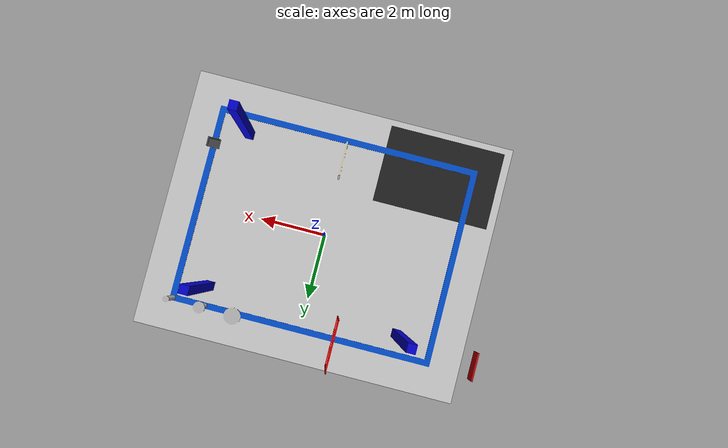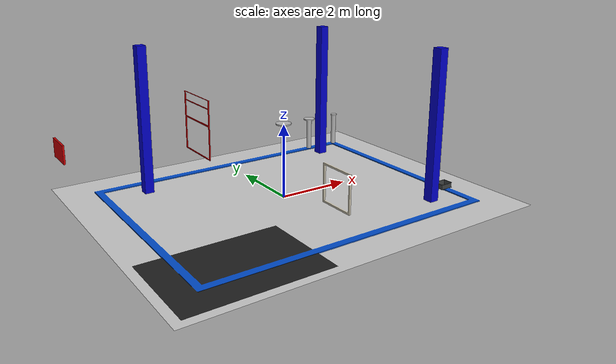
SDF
<?xml version="1.0"?>
<sdf version="1.6">
    <model name="imav_indoor24">
        <static>true</static>
        <link name="link">
            <collision name="collision">
                <geometry>
                    <mesh>
                        <scale>1 1 1</scale>
                        <uri>//imav_indoor24/meshes/mundoImav.dae</uri>
                    </mesh>
                    <surface>
                        <friction>
                            <ode>
                                <mu>1.2</mu>
                                <mu2>1.2</mu2>
                            </ode>
                        </friction>
                    </surface>
                </geometry>
            </collision>
            <visual name="visual">
                <geometry>
                    <mesh>
                        <scale>1 1 1</scale>
                        <uri>model://imav_indoor24/meshes/mundoImav.dae</uri>
                    </mesh>
                </geometry>
            </visual>
        </link>
    </model>
</sdf>
